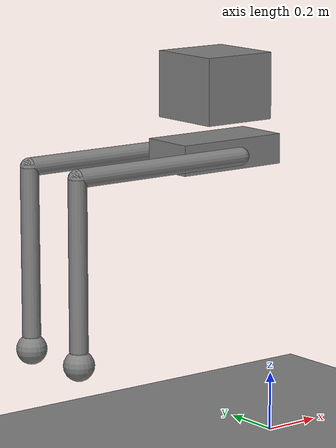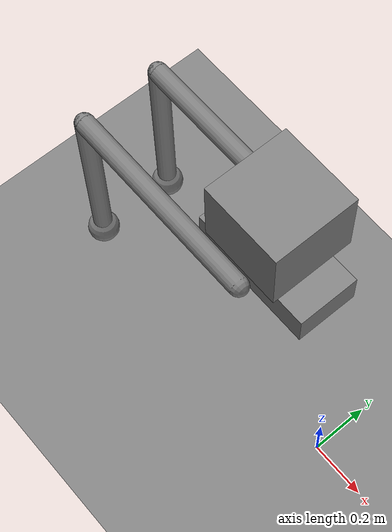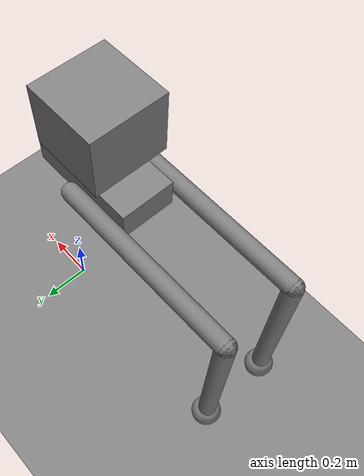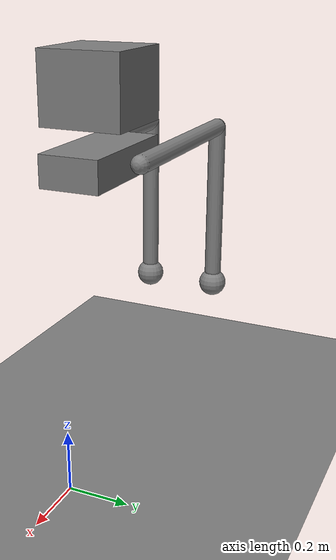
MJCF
<?xml version="1.0" encoding="utf-8"?>
<!-- 单独训练外肢体 -->
<!-- 负重能力测试 -->
<mujoco model="XMLModel">
	<statistic center="0 0 1" extent="2"/>
	<option timestep="0.00555"/>
	<default>
		<motor ctrllimited="true" ctrlrange="-1 1"/>
		<default class="body">
			<geom condim="1" friction="1.0 0.05 0.05" type="capsule" solimp="0.9 0.99 0.003" solref="0.015 1"/>
			<joint armature="0.000" damping="0.1" limited="true" stiffness="5" type="hinge" solimplimit="0 0.99 0.01"/>
			<site group="3" size="0.04"/>
			<default class="force-torque">
				<site rgba="1 0 0 1" size="0.01 0.01 0.02" type="box"/>
			</default>
			<default class="touch">
				<site rgba="0 0 1 0.3" type="capsule"/>
			</default>
		</default>
	</default>
	<asset/>
	<worldbody>
		<geom conaffinity="1" name="floor" size="100 100 0.2" type="plane"/>
			<body childclass="body" name="SRL" pos="0 0 1">
                <freejoint name="root"/>
				<body name="SRL_root" pos="-0.25 0 0"   >
					<geom density="1000" name="SRL_geom_root" pos="0 0 0" size="0.2 0.095 0.05" type="box" contype="1" conaffinity="1"/>
					<geom density="5400" name="SRL_geom_load" pos="0 0 0.22" size="0.13 0.13 0.11" type="box" contype="1" conaffinity="1"/>
					<body name="SRL_right_leg1" pos="0.00 -0.13 0"  quat="1.0 0.0 0.0 0.0">
						<geom density="1000" fromto="0 0 0 -0.65 0 0" name="SRL_geom_right_leg1" size="0.03" type="capsule"/>
						<joint armature="0.00" axis="-1 0 0" damping="40" name="SRL_joint_right_hipjoint_x" pos="0 0 0" range="0 40" stiffness="800" actuatorfrcrange="-300 300"/>
						<joint armature="0.00" axis="0 -1 0" damping="40" name="SRL_joint_right_hipjoint_y" pos="0 0 0" range="-170 170" stiffness="800" actuatorfrcrange="-300 300"/>
						<body name="SRL_right_leg2" pos="-0.65 0 0" quat="0.70711 0.0 0.70711 0.0">
							<geom density="1000" fromto="0 0 0 0.55 0 0" name="SRL_geom_right_leg2" size="0.03" type="capsule"/>
							<joint armature="0.00" axis="0 -1 0" damping="40" name="SRL_joint_right_kneejoint" pos="0 0 0" range="-170 170" stiffness="800" actuatorfrcrange="-300 300"/>
							<body name="SRL_right_end" pos="0.55 0 0" quat="0.70711 0.0 -0.70711 0.0">
								<geom density="1000" friction="5.0 0.05 0.05" name="SRL_geom_right_end" pos="0 0 -0.045" size="0.05" type="sphere"  contype="1" conaffinity="1"/>
							</body>
						</body>
					</body>
					<body name="SRL_left_leg1" pos="0.00 0.13 0"  quat="1.0 0.0 0.0 0.0">
						<geom density="1000" fromto="0 0 0 -0.65 0 0" name="SRL_geom_left_leg1" size="0.03" type="capsule"/>
						<joint armature="0.00" axis="1 0 0" damping="40" name="SRL_joint_left_hip_x" pos="0 0 0" range="0 40" stiffness="800"  />
						<joint armature="0.00" axis="0 -1 0" damping="40" name="SRL_joint_left_hip_y" pos="0 0 0" range="-170 170" stiffness="800"  />
						<body name="SRL_left_leg2" pos="-0.65 0 0" quat="0.70711 0.0 0.70711 0.0">
							<geom density="1000" fromto="0 0 0 0.55 0 0" name="SRL_geom_left_leg2" size="0.03" type="capsule"/>
							<joint armature="0.00" axis="0 -1 0" damping="40" name="SRL_joint_left_kneejoint" pos="0 0 0" range="-170 170" stiffness="800"  />
							<body name="SRL_left_end" pos="0.55 0 0" quat="0.70711 0.0 -0.70711 0.0">
								<geom density="1000" friction="5.0 0.05 0.05" name="SRL_geom_left_end" pos="0 0 -0.045" size="0.05" type="sphere" />
							</body>
						</body>
					</body>
				</body>
			</body>
	</worldbody>
	<actuator>
		<motor gear="125" joint="SRL_joint_right_hipjoint_x" name="SRL_joint_right_hipjoint_x"/>
		<motor gear="125" joint="SRL_joint_right_hipjoint_y" name="SRL_joint_right_hipjoint_y"/>
		<motor gear="125" joint="SRL_joint_right_kneejoint" name="SRL_joint_right_kneejoint"/>
		<motor gear="125" joint="SRL_joint_left_hip_x" name="SRL_joint_left_hip_x"/>
		<motor gear="125" joint="SRL_joint_left_hip_y" name="SRL_joint_left_hip_y"/>
		<motor gear="125" joint="SRL_joint_left_kneejoint" name="SRL_joint_left_kneejoint"/>
	</actuator>
</mujoco>
